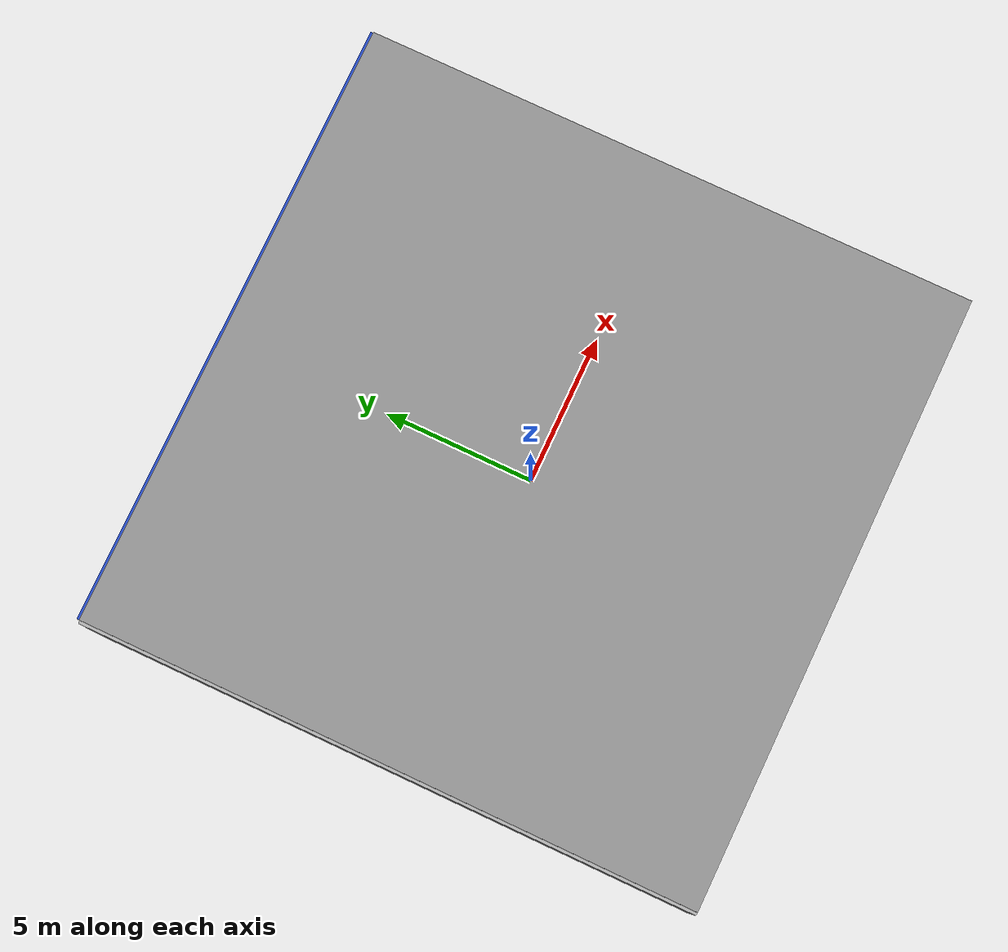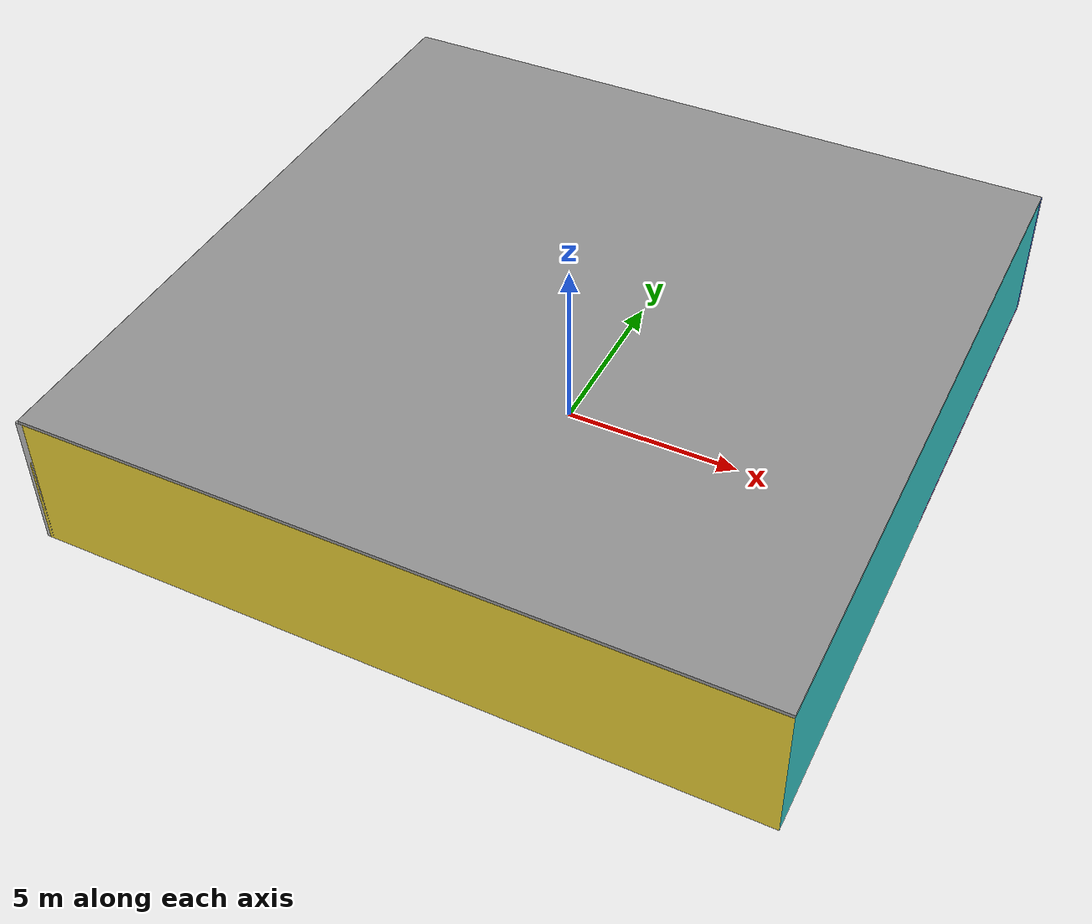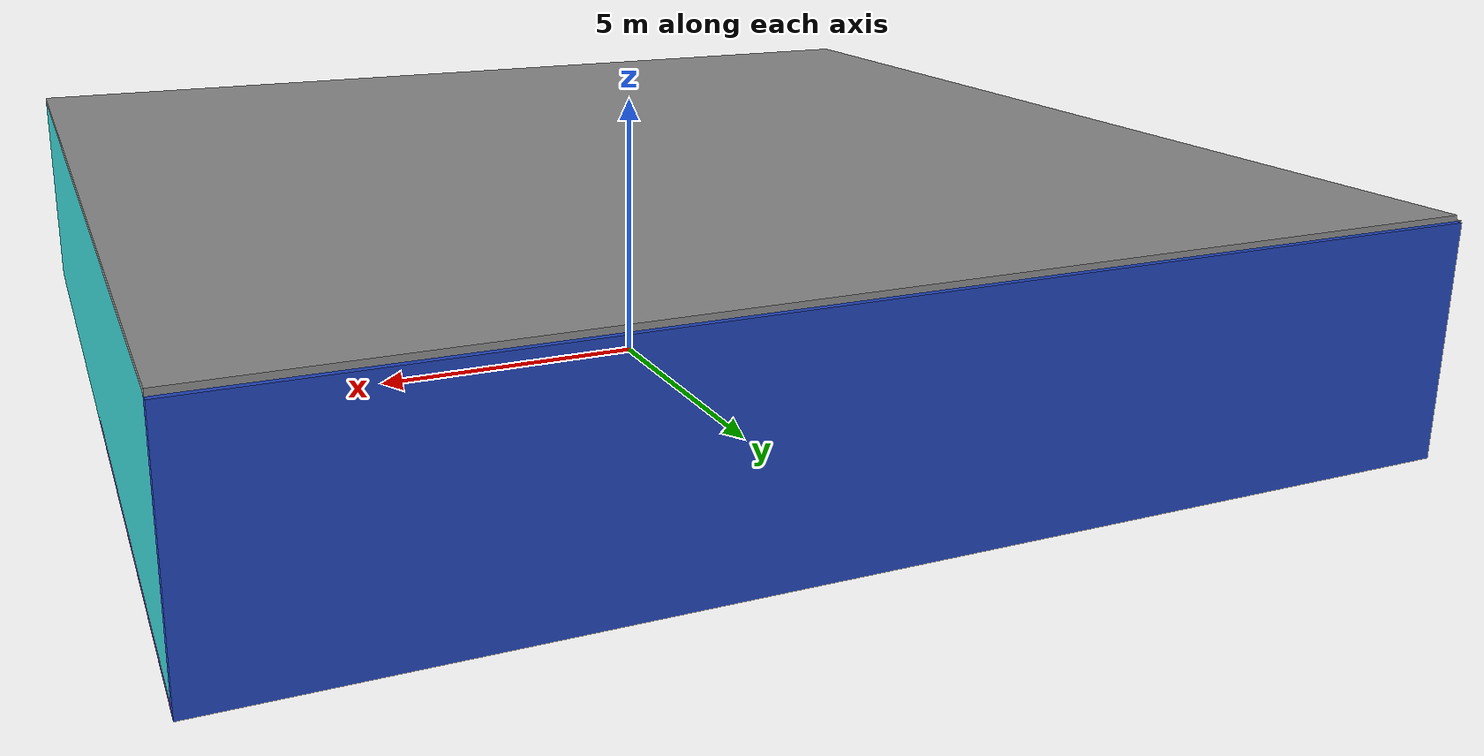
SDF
<sdf version="1.4">
 <world name="default">
  <physics type="ode">
   <max_step_size>0.001</max_step_size>
   <real_time_factor>1</real_time_factor>
   <real_time_update_rate>1000</real_time_update_rate>
   <gravity>0 0 -9.8</gravity>
  </physics>
  <scene><ambient>0.4 0.4 0.4 1</ambient><background>0.7 0.7 0.7 1</background><shadows>1</shadows></scene>
  <model name="Surrounding">
   <static>1</static>
   <link name="Ceiling">
    <collision name="Ceiling_Collision"><geometry><box><size>20 20 0.1</size></box></geometry></collision>
    <visual name="Ceiling_Visual">
     <geometry><box><size>20 20 0.1</size></box></geometry>
     <material>
      <script><uri>file://media/materials/scripts/gazebo.material</uri><name>Gazebo/Grey</name></script>
     </material>
    </visual>
    <pose>0 0 4.05 0 0 0</pose>
   </link>
   <link name="Wall_South">
    <collision name="Wall_South_Collision">
     <geometry><box><size>20 0 4</size></box></geometry>
     <pose>0 0 2 0 -0 0</pose>
    </collision>
    <visual name="Wall_South_Visual">
     <pose>0 0 2 0 -0 0</pose>
     <geometry><box><size>20 0 4</size></box></geometry>
     <material>
      <script><uri>file://media/materials/scripts/gazebo.material</uri><name>Gazebo/ZincYellow</name></script>
     </material>
    </visual>
    <velocity_decay><linear>0</linear><angular>0</angular></velocity_decay>
    <pose>0 -10 0 0 -0 0</pose>
   </link>
   <link name="Wall_East">
    <collision name="Wall_21_Collision">
     <geometry><box><size>20 0 4</size></box></geometry>
     <pose>0 0 2 0 -0 0</pose>
    </collision>
    <visual name="Wall_21_Visual">
     <pose>0 0 2 0 -0 0</pose>
     <geometry><box><size>20 0 4</size></box></geometry>
     <material>
      <script><uri>file://media/materials/scripts/gazebo.material</uri><name>Gazebo/Turquoise</name></script>
     </material>
    </visual>
    <velocity_decay><linear>0</linear><angular>0</angular></velocity_decay>
    <pose>10 0 0 0 -0 1.5708</pose>
   </link>
   <link name="Wall_North">
    <collision name="Wall_22_Collision">
     <geometry><box><size>20 0.2 4</size></box></geometry>
     <pose>0 0 2 0 -0 0</pose>
    </collision>
    <visual name="Wall_22_Visual">
     <pose>0 0 2 0 -0 0</pose>
     <geometry><box><size>20 0.2 4</size></box></geometry>
     <material>
      <script><uri>file://media/materials/scripts/gazebo.material</uri><name>Gazebo/BlueGlow</name></script>
     </material>
    </visual>
    <velocity_decay><linear>0</linear><angular>0</angular></velocity_decay>
    <pose>0 10 0 0 -0 0</pose>
   </link>
   <link name="Wall_West">
    <collision name="Wall_23_Collision">
     <geometry><box><size>20 0.2 4</size></box></geometry>
     <pose>0 0 2 0 -0 0</pose>
    </collision>
    <visual name="Wall_23_Visual">
     <pose>0 0 2 0 -0 0</pose>
     <geometry><box><size>20 0.2 4</size></box></geometry>
     <material>
      <script><uri>file://media/materials/scripts/gazebo.material</uri><name>Gazebo/LightOn</name></script>
     </material>
    </visual>
    <velocity_decay><linear>0</linear><angular>0</angular></velocity_decay>
    <pose>-10 0 0 0 0 -1.5708</pose>
   </link>
   <link name="Ground_link">
    <collision name="collision">
     <pose>0 0 .05 0 -0 0</pose>
     <geometry><box><size>20 20 0.1</size></box></geometry>
    </collision>
    <visual name="visual">
     <pose>0 0 .05 0 -0 0</pose>
     <geometry><box><size>20 20 0.1</size></box></geometry>
     <material>
      <script><uri>file://media/materials/scripts/gazebo.material</uri><name>Gazebo/PurpleGlow</name></script>
     </material>
    </visual>
   </link>
   <static>1</static>
  </model>
  <spherical_coordinates>
   <surface_model>EARTH_WGS84</surface_model>
   <latitude_deg>0</latitude_deg>
   <longitude_deg>0</longitude_deg>
   <elevation>0</elevation>
   <heading_deg>0</heading_deg>
  </spherical_coordinates>
  <light name="lightball_0" type="diffuse">
   <diffuse>0.8 0.8 0.8 1</diffuse>
   <specular>0.2 0.2 0.2 1</specular>
   <attenuation>
    <range>100</range>
    <constant>0.7</constant>
    <linear>0.01</linear>
    <quadratic>0.001</quadratic>
   </attenuation>
   <direction>-0.5 0.1 -0.9</direction>
   <pose>1.49820197866 4.86837563074 2.33621961543 0 0 0</pose>
  </light>
  <light name="lightball_1" type="diffuse">
   <diffuse>0.8 0.8 0.8 1</diffuse>
   <specular>0.2 0.2 0.2 1</specular>
   <attenuation>
    <range>100</range>
    <constant>0.7</constant>
    <linear>0.01</linear>
    <quadratic>0.001</quadratic>
   </attenuation>
   <direction>-0.5 0.1 -0.9</direction>
   <pose>-1.05674825637 5.98014619076 2.79334767134 0 0 0</pose>
  </light>
  <light name="lightball_2" type="diffuse">
   <diffuse>0.8 0.8 0.8 1</diffuse>
   <specular>0.2 0.2 0.2 1</specular>
   <attenuation>
    <range>100</range>
    <constant>0.7</constant>
    <linear>0.01</linear>
    <quadratic>0.001</quadratic>
   </attenuation>
   <direction>-0.5 0.1 -0.9</direction>
   <pose>6.96913451617 3.11265076344 2.78343874185 0 0 0</pose>
  </light>
  <light name="lightball_3" type="diffuse">
   <diffuse>0.8 0.8 0.8 1</diffuse>
   <specular>0.2 0.2 0.2 1</specular>
   <attenuation>
    <range>100</range>
    <constant>0.7</constant>
    <linear>0.01</linear>
    <quadratic>0.001</quadratic>
   </attenuation>
   <direction>-0.5 0.1 -0.9</direction>
   <pose>2.63067951707 0.580209893531 2.70597766062 0 0 0</pose>
  </light>
  <light name="lightball_4" type="diffuse">
   <diffuse>0.8 0.8 0.8 1</diffuse>
   <specular>0.2 0.2 0.2 1</specular>
   <attenuation>
    <range>100</range>
    <constant>0.7</constant>
    <linear>0.01</linear>
    <quadratic>0.001</quadratic>
   </attenuation>
   <direction>-0.5 0.1 -0.9</direction>
   <pose>-8.84867103616 -5.0828059259 0.718280441615 0 0 0</pose>
  </light>
  <light name="lightball_5" type="diffuse">
   <diffuse>0.8 0.8 0.8 1</diffuse>
   <specular>0.2 0.2 0.2 1</specular>
   <attenuation>
    <range>100</range>
    <constant>0.7</constant>
    <linear>0.01</linear>
    <quadratic>0.001</quadratic>
   </attenuation>
   <direction>-0.5 0.1 -0.9</direction>
   <pose>-2.16278653426 5.5300763943 2.87380668657 0 0 0</pose>
  </light>
  <light name="lightball_6" type="diffuse">
   <diffuse>0.8 0.8 0.8 1</diffuse>
   <specular>0.2 0.2 0.2 1</specular>
   <attenuation>
    <range>100</range>
    <constant>0.7</constant>
    <linear>0.01</linear>
    <quadratic>0.001</quadratic>
   </attenuation>
   <direction>-0.5 0.1 -0.9</direction>
   <pose>6.19226293566 -5.734467622 0.695361691962 0 0 0</pose>
  </light>
  <light name="lightball_7" type="diffuse">
   <diffuse>0.8 0.8 0.8 1</diffuse>
   <specular>0.2 0.2 0.2 1</specular>
   <attenuation>
    <range>100</range>
    <constant>0.7</constant>
    <linear>0.01</linear>
    <quadratic>0.001</quadratic>
   </attenuation>
   <direction>-0.5 0.1 -0.9</direction>
   <pose>-9.16774038405 -4.00965292212 1.74413120014 0 0 0</pose>
  </light>
  <light name="lightball_8" type="diffuse">
   <diffuse>0.8 0.8 0.8 1</diffuse>
   <specular>0.2 0.2 0.2 1</specular>
   <attenuation>
    <range>100</range>
    <constant>0.7</constant>
    <linear>0.01</linear>
    <quadratic>0.001</quadratic>
   </attenuation>
   <direction>-0.5 0.1 -0.9</direction>
   <pose>6.1345349354 9.61432318434 2.48369676599 0 0 0</pose>
  </light>
  <include>
   <uri>model://construction_cone</uri>
   <pose>-6.72419217719 -2.2542317185 0 0 0 0.839619685278</pose>
  </include>
  <include>
   <uri>model://textured_shapes</uri>
   <pose>-0.935059174181 -7.96152335921 0 0 0 1.89389739013</pose>
  </include>
  <include>
   <uri>model://textured_shapes</uri>
   <pose>-1.99425995966 -5.21259715108 0 0 0 3.0091938591</pose>
  </include>
  <include>
   <uri>model://robocup_3Dsim_goal</uri>
   <pose>1.01850113965 8.04883929443 0 0 0 3.08265590595</pose>
  </include>
 </world>
</sdf>

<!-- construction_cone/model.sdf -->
<sdf version="1.5">
  <model name="Construction Cone">
    <link name="link">
      <collision name="collision">
        <geometry>
          <mesh>
            <scale>10 10 10</scale>
            <uri>file://isr-testbed/construction_cone/meshes/construction_cone.dae</uri>
          </mesh>
        </geometry>
      </collision>
      <visual name="visual">
        <geometry>
          <mesh>
            <scale>10 10 10</scale>
            <uri>file://isr-testbed/construction_cone/meshes/construction_cone.dae</uri>
          </mesh>
        </geometry>
      </visual>
    </link>
  </model>
</sdf>

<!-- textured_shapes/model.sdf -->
<sdf version="1.6">
  <model name="textured_shapes">
    <pose>0 0 0.5 0 0 0</pose>
    <link name="box">
      <pose>0 -1.5 0 0 0 0</pose>
      <collision name="collision">
        <geometry>
          <box>
            <size>1 1 1</size>
          </box>
        </geometry>
      </collision>
      <visual name="visual">
        <geometry>
          <box>
            <size>1 1 1</size>
          </box>
        </geometry>
        <material>
          <script>
            <uri>model://../model_source/models/textured_shapes/materials/scripts</uri>
            <uri>model://../model_source/models/textured_shapes/materials/textures</uri>
            <name>TexturedShape/Squares</name>
          </script>
        </material>
      </visual>
    </link>
    <link name="sphere">
      <collision name="collision">
        <geometry>
          <sphere>
            <radius>0.5</radius>
          </sphere>
        </geometry>
      </collision>
      <visual name="visual">
        <geometry>
          <sphere>
            <radius>0.5</radius>
          </sphere>
        </geometry>
        <material>
          <script>
            <uri>model://../model_source/models/textured_shapes/materials/scripts</uri>
            <uri>model://../model_source/models/textured_shapes/materials/textures</uri>
            <name>TexturedShape/Squares</name>
          </script>
        </material>
      </visual>
    </link>
    <link name="cylinder">
      <pose>0 1.5 0 0 0 0</pose>
      <collision name="collision">
        <geometry>
          <cylinder>
            <radius>0.5</radius>
            <length>1</length>
          </cylinder>
        </geometry>
      </collision>
      <visual name="visual">
        <geometry>
          <cylinder>
            <radius>0.5</radius>
            <length>1</length>
          </cylinder>
        </geometry>
        <material>
          <script>
            <uri>model://../model_source/models/textured_shapes/materials/scripts</uri>
            <uri>model://../model_source/models/textured_shapes/materials/textures</uri>
            <name>TexturedShape/Squares</name>
          </script>
        </material>
      </visual>
    </link>
  </model>
</sdf>

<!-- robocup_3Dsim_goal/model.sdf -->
<sdf version="1.5">
  <model name="robocup_3d_goal">
    <static>true</static>
    <link name="left_post">
      <pose>0 1.05 0.45 0 0 0</pose>
      <collision name="collision">
        <geometry>
          <cylinder>
            <radius>0.05</radius>
            <length>0.9</length>
          </cylinder>
        </geometry>
      </collision>
      <visual name="visual">
        <geometry>
          <cylinder>
            <radius>0.05</radius>
            <length>0.9</length>
          </cylinder>
        </geometry>
        <material>
          <script>
            <uri>file://media/materials/scripts/gazebo.material</uri>
            <name>Gazebo/ZincYellow</name>
          </script>
        </material>
      </visual>
    </link>
    <link name="left_support_horiz_lower">
      <pose>0.30 1.05 0.01 0 0 0</pose>
      <collision name="collision">
        <geometry>
          <box>
            <size>0.50 0.02 0.02</size>
          </box>
        </geometry>
      </collision>
      <visual name="visual">
        <geometry>
          <box>
            <size>0.50 0.02 0.02</size>
          </box>
        </geometry>
        <material>
          <script>
            <uri>file://media/materials/scripts/gazebo.material</uri>
            <name>Gazebo/White</name>
          </script>
        </material>
      </visual>
    </link>
    <link name="left_support_horiz_upper">
      <pose>0.30 1.05 0.79 0 0 0</pose>
      <collision name="collision">
        <geometry>
          <box>
            <size>0.50 0.02 0.02</size>
          </box>
        </geometry>
      </collision>
      <visual name="visual">
        <geometry>
          <box>
            <size>0.50 0.02 0.02</size>
          </box>
        </geometry>
        <material>
          <script>
            <uri>file://media/materials/scripts/gazebo.material</uri>
            <name>Gazebo/White</name>
          </script>
        </material>
      </visual>
    </link>
    <link name="left_support_vertical">
      <pose>0.56 1.05 0.4 0 1.5708 0</pose>
      <collision name="collision">
        <geometry>
          <box>
            <size>0.80 0.02 0.02</size>
          </box>
        </geometry>
      </collision>
      <visual name="visual">
        <geometry>
          <box>
            <size>0.80 0.02 0.02</size>
          </box>
        </geometry>
        <material>
          <script>
            <uri>file://media/materials/scripts/gazebo.material</uri>
            <name>Gazebo/White</name>
          </script>
        </material>
      </visual>
    </link>
    <link name="right_support_horiz_lower">
      <pose>0.30 -1.05 0.01 0 0 0</pose>
      <collision name="collision">
        <geometry>
          <box>
            <size>0.50 0.02 0.02</size>
          </box>
        </geometry>
      </collision>
      <visual name="visual">
        <geometry>
          <box>
            <size>0.50 0.02 0.02</size>
          </box>
        </geometry>
        <material>
          <script>
            <uri>file://media/materials/scripts/gazebo.material</uri>
            <name>Gazebo/White</name>
          </script>
        </material>
      </visual>
    </link>
    <link name="right_support_horiz_upper">
      <pose>0.30 -1.05 0.79 0 0 0</pose>
      <collision name="collision">
        <geometry>
          <box>
            <size>0.50 0.02 0.02</size>
          </box>
        </geometry>
      </collision>
      <visual name="visual">
        <geometry>
          <box>
            <size>0.50 0.02 0.02</size>
          </box>
        </geometry>
        <material>
          <script>
            <uri>file://media/materials/scripts/gazebo.material</uri>
            <name>Gazebo/White</name>
          </script>
        </material>
      </visual>
    </link>
    <link name="right_support_vertical">
      <pose>0.56 -1.05 0.4 0 1.5708 0</pose>
      <collision name="collision">
        <geometry>
          <box>
            <size>0.80 0.02 0.02</size>
          </box>
        </geometry>
      </collision>
      <visual name="visual">
        <geometry>
          <box>
            <size>0.80 0.02 0.02</size>
          </box>
        </geometry>
        <material>
          <script>
            <uri>file://media/materials/scripts/gazebo.material</uri>
            <name>Gazebo/White</name>
          </script>
        </material>
      </visual>
    </link>
    <link name="center_support_horiz_lower">
      <pose>0.56 0 0.01 0 1.5708 0</pose>
      <collision name="collision">
        <geometry>
          <box>
            <size>0.02 2.08 0.02</size>
          </box>
        </geometry>
      </collision>
      <visual name="visual">
        <geometry>
          <box>
            <size>0.02 2.08 0.02</size>
          </box>
        </geometry>
        <material>
          <script>
            <uri>file://media/materials/scripts/gazebo.material</uri>
            <name>Gazebo/White</name>
          </script>
        </material>
      </visual>
    </link>
    <link name="center_support_horiz_upper">
      <pose>0.56 0 0.79 0 1.5708 0</pose>
      <collision name="collision">
        <geometry>
          <box>
            <size>0.02 2.08 0.02</size>
          </box>
        </geometry>
      </collision>
      <visual name="visual">
        <geometry>
          <box>
            <size>0.02 2.08 0.02</size>
          </box>
        </geometry>
        <material>
          <script>
            <uri>file://media/materials/scripts/gazebo.material</uri>
            <name>Gazebo/White</name>
          </script>
        </material>
      </visual>
    </link>
    <link name="right_post">
      <pose>0 -1.05 0.45 0 0 0</pose>
      <collision name="collision">
        <geometry>
          <cylinder>
            <radius>0.05</radius>
            <length>0.9</length>
          </cylinder>
        </geometry>
      </collision>
      <visual name="visual">
        <geometry>
          <cylinder>
            <radius>0.05</radius>
            <length>0.9</length>
          </cylinder>
        </geometry>
        <material>
          <script>
            <uri>file://media/materials/scripts/gazebo.material</uri>
            <name>Gazebo/ZincYellow</name>
          </script>
        </material>
      </visual>
    </link>
    <link name="crossbar">
      <pose>0 0 0.85 1.57 1.57 0</pose>
      <collision name="collision">
        <geometry>
          <cylinder>
            <radius>0.05</radius>
            <length>2.0</length>
          </cylinder>
        </geometry>
      </collision>
      <visual name="visual">
        <geometry>
          <cylinder>
            <radius>0.05</radius>
            <length>2.0</length>
          </cylinder>
        </geometry>
        <material>
          <script>
            <uri>file://media/materials/scripts/gazebo.material</uri>
            <name>Gazebo/ZincYellow</name>
          </script>
        </material>
      </visual>
    </link>
    <link name="center_net">
      <pose>0.56 0 0.40 0 0 0</pose>
      <collision name="collision">
        <geometry>
          <box>
            <size>0.01 2.1 0.80</size>
          </box>
        </geometry>
      </collision>
      <visual name="visual">
        <geometry>
          <box>
            <size>0.01 2.1 0.80</size>
          </box>
        </geometry>
        <material>
          <script>
            <uri>model://../model_source/models/robocup09_spl_field/materials/scripts/</uri>
            <uri>model://../model_source/models/robocup09_spl_field/materials/textures/</uri>
            <name>RoboCup/Net</name>
          </script>
        </material>
      </visual>
    </link>
    <link name="left_net">
      <pose>0.30 1.05 0.40 0 0 0</pose>
      <collision name="collision">
        <geometry>
          <box>
            <size>0.50 0.01 0.76</size>
          </box>
        </geometry>
      </collision>
      <visual name="visual">
        <geometry>
          <box>
            <size>0.50 0.01 0.76</size>
          </box>
        </geometry>
        <material>
          <script>
            <uri>model://../model_source/models/robocup09_spl_field/materials/scripts/</uri>
            <uri>model://../model_source/models/robocup09_spl_field/materials/textures/</uri>
            <name>RoboCup/Net</name>
          </script>
        </material>
      </visual>
    </link>
    <link name="right_net">
      <pose>0.30 -1.05 0.40 0 0 0</pose>
      <collision name="collision">
        <geometry>
          <box>
            <size>0.50 0.01 0.76</size>
          </box>
        </geometry>
      </collision>
      <visual name="visual">
        <geometry>
          <box>
            <size>0.50 0.01 0.76</size>
          </box>
        </geometry>
        <material>
          <script>
            <uri>model://../model_source/models/robocup09_spl_field/materials/scripts/</uri>
            <uri>model://../model_source/models/robocup09_spl_field/materials/textures/</uri>
            <name>RoboCup/Net</name>
          </script>
        </material>
      </visual>
    </link>
  </model>
</sdf>
